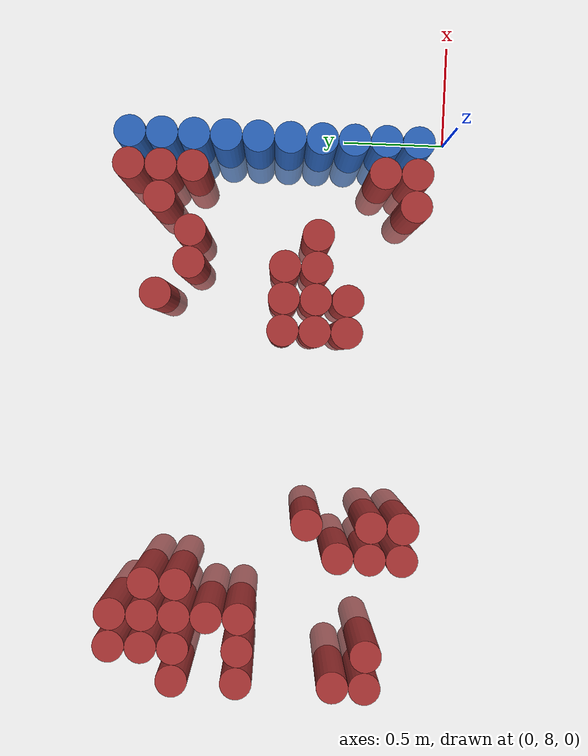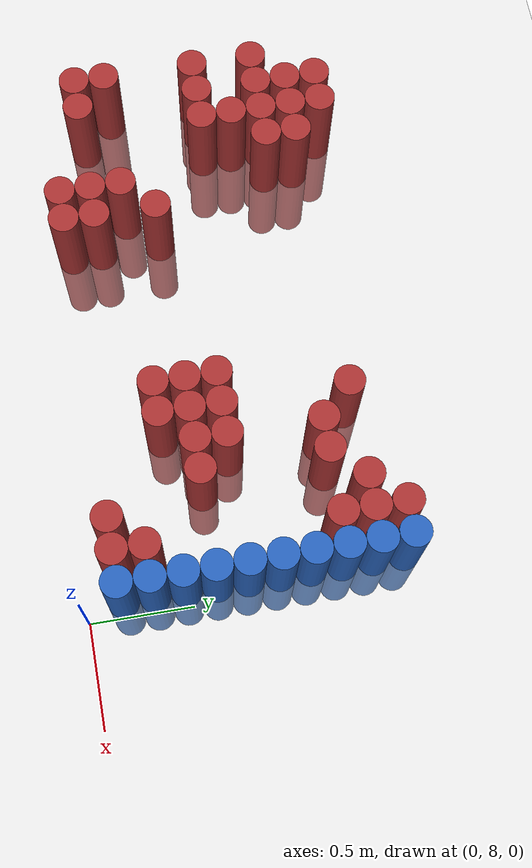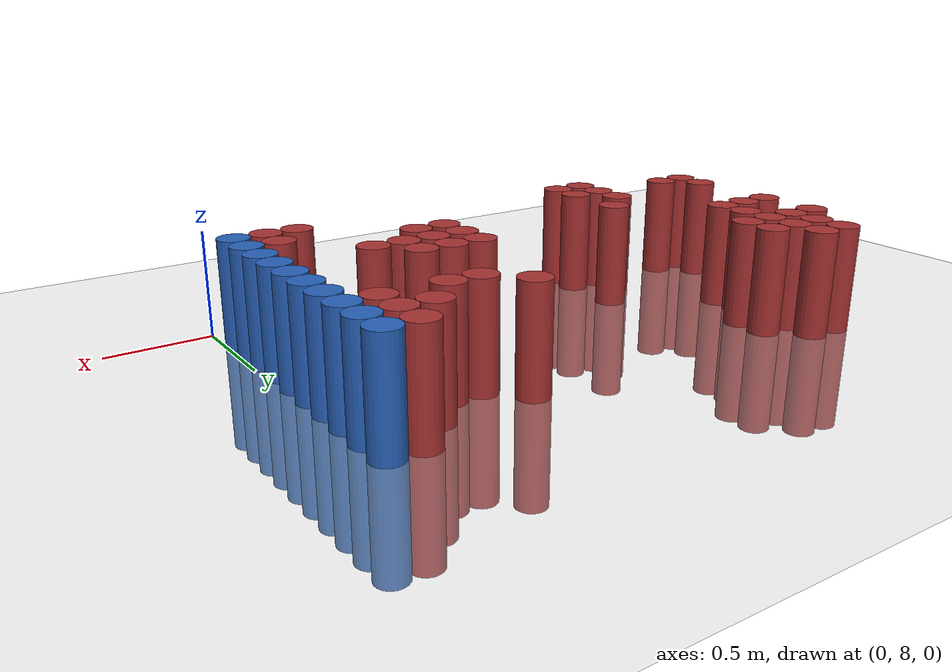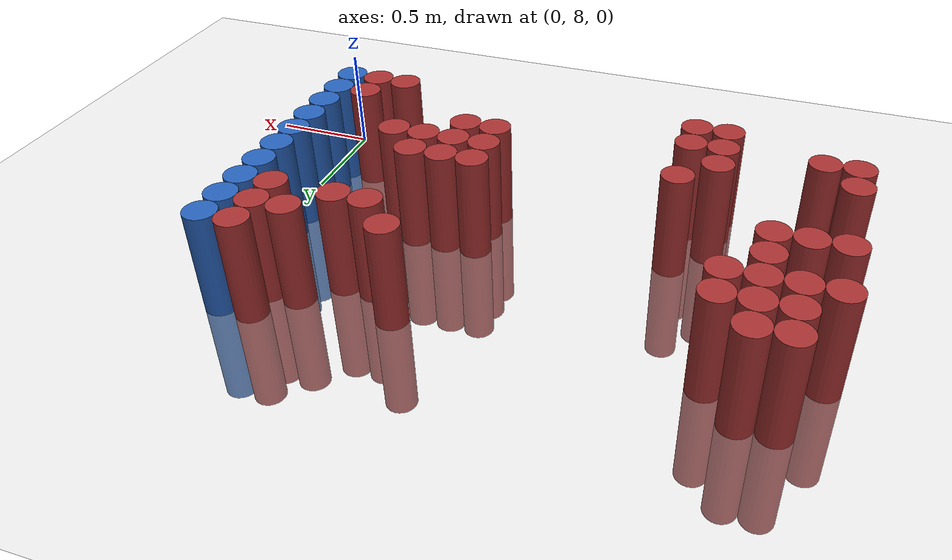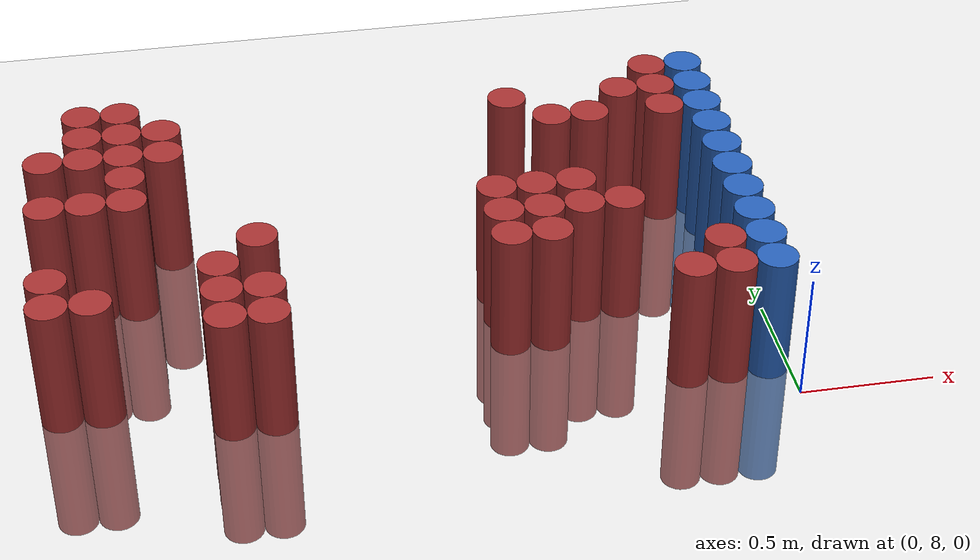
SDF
<sdf version="1.6">
 <world name="default">
  <model name="ground_plane">
   <static>1</static>
   <link name="link">
    <collision name="collision">
     <geometry><plane><normal>0 0 1</normal><size>100 100</size></plane></geometry>
     <surface><friction><ode><mu>100</mu><mu2>50</mu2></ode></friction></surface>
    </collision>
    <visual name="visual">
     <cast_shadows>0</cast_shadows>
     <geometry><plane><normal>0 0 1</normal><size>100 100</size></plane></geometry>
     <material>
      <script><uri>file://media/materials/scripts/gazebo.material</uri><name>Gazebo/Grey</name></script>
     </material>
    </visual>
   </link>
  </model>
  <model name="unit_cylinder_228">
   <static>1</static>
   <pose>-2.625000 8.325000 0.000000 0.000000 0.000000 0.000000</pose>
   <link name="link">
    <inertial>
     <mass>1</mass>
     <inertia><ixx>0.145833</ixx><ixy>0</ixy><ixz>0</ixz><iyy>0.145833</iyy><iyz>0</iyz><izz>0.125</izz></inertia>
    </inertial>
    <collision name="collision">
     <geometry><cylinder><radius>0.075000</radius><length>1</length></cylinder></geometry>
    </collision>
    <visual name="visual">
     <geometry><cylinder><radius>0.075000</radius><length>1</length></cylinder></geometry>
     <material>
      <ambient>0.648000 0.192000 0.192000 1</ambient>
      <diffuse>0.648000 0.192000 0.192000 1</diffuse>
     </material>
     <material>
      <script><name>Gazebo/Grey</name><uri>file://media/materials/scripts/gazebo.material</uri></script>
     </material>
    </visual>
   </link>
  </model>
  <model name="unit_cylinder_229">
   <static>1</static>
   <pose>-2.625000 8.475000 0.000000 0.000000 0.000000 0.000000</pose>
   <link name="link">
    <inertial>
     <mass>1</mass>
     <inertia><ixx>0.145833</ixx><ixy>0</ixy><ixz>0</ixz><iyy>0.145833</iyy><iyz>0</iyz><izz>0.125</izz></inertia>
    </inertial>
    <collision name="collision">
     <geometry><cylinder><radius>0.075000</radius><length>1</length></cylinder></geometry>
    </collision>
    <visual name="visual">
     <geometry><cylinder><radius>0.075000</radius><length>1</length></cylinder></geometry>
     <material>
      <ambient>0.648000 0.192000 0.192000 1</ambient>
      <diffuse>0.648000 0.192000 0.192000 1</diffuse>
     </material>
     <material>
      <script><name>Gazebo/Grey</name><uri>file://media/materials/scripts/gazebo.material</uri></script>
     </material>
    </visual>
   </link>
  </model>
  <model name="unit_cylinder_230">
   <static>1</static>
   <pose>-2.625000 8.925000 0.000000 0.000000 0.000000 0.000000</pose>
   <link name="link">
    <inertial>
     <mass>1</mass>
     <inertia><ixx>0.145833</ixx><ixy>0</ixy><ixz>0</ixz><iyy>0.145833</iyy><iyz>0</iyz><izz>0.125</izz></inertia>
    </inertial>
    <collision name="collision">
     <geometry><cylinder><radius>0.075000</radius><length>1</length></cylinder></geometry>
    </collision>
    <visual name="visual">
     <geometry><cylinder><radius>0.075000</radius><length>1</length></cylinder></geometry>
     <material>
      <ambient>0.648000 0.192000 0.192000 1</ambient>
      <diffuse>0.648000 0.192000 0.192000 1</diffuse>
     </material>
     <material>
      <script><name>Gazebo/Grey</name><uri>file://media/materials/scripts/gazebo.material</uri></script>
     </material>
    </visual>
   </link>
  </model>
  <model name="unit_cylinder_231">
   <static>1</static>
   <pose>-2.625000 9.225000 0.000000 0.000000 0.000000 0.000000</pose>
   <link name="link">
    <inertial>
     <mass>1</mass>
     <inertia><ixx>0.145833</ixx><ixy>0</ixy><ixz>0</ixz><iyy>0.145833</iyy><iyz>0</iyz><izz>0.125</izz></inertia>
    </inertial>
    <collision name="collision">
     <geometry><cylinder><radius>0.075000</radius><length>1</length></cylinder></geometry>
    </collision>
    <visual name="visual">
     <geometry><cylinder><radius>0.075000</radius><length>1</length></cylinder></geometry>
     <material>
      <ambient>0.648000 0.192000 0.192000 1</ambient>
      <diffuse>0.648000 0.192000 0.192000 1</diffuse>
     </material>
     <material>
      <script><name>Gazebo/Grey</name><uri>file://media/materials/scripts/gazebo.material</uri></script>
     </material>
    </visual>
   </link>
  </model>
  <model name="unit_cylinder_236">
   <static>1</static>
   <pose>-2.475000 8.325000 0.000000 0.000000 0.000000 0.000000</pose>
   <link name="link">
    <inertial>
     <mass>1</mass>
     <inertia><ixx>0.145833</ixx><ixy>0</ixy><ixz>0</ixz><iyy>0.145833</iyy><iyz>0</iyz><izz>0.125</izz></inertia>
    </inertial>
    <collision name="collision">
     <geometry><cylinder><radius>0.075000</radius><length>1</length></cylinder></geometry>
    </collision>
    <visual name="visual">
     <geometry><cylinder><radius>0.075000</radius><length>1</length></cylinder></geometry>
     <material>
      <ambient>0.648000 0.192000 0.192000 1</ambient>
      <diffuse>0.648000 0.192000 0.192000 1</diffuse>
     </material>
     <material>
      <script><name>Gazebo/Grey</name><uri>file://media/materials/scripts/gazebo.material</uri></script>
     </material>
    </visual>
   </link>
  </model>
  <model name="unit_cylinder_237">
   <static>1</static>
   <pose>-2.475000 8.925000 0.000000 0.000000 0.000000 0.000000</pose>
   <link name="link">
    <inertial>
     <mass>1</mass>
     <inertia><ixx>0.145833</ixx><ixy>0</ixy><ixz>0</ixz><iyy>0.145833</iyy><iyz>0</iyz><izz>0.125</izz></inertia>
    </inertial>
    <collision name="collision">
     <geometry><cylinder><radius>0.075000</radius><length>1</length></cylinder></geometry>
    </collision>
    <visual name="visual">
     <geometry><cylinder><radius>0.075000</radius><length>1</length></cylinder></geometry>
     <material>
      <ambient>0.648000 0.192000 0.192000 1</ambient>
      <diffuse>0.648000 0.192000 0.192000 1</diffuse>
     </material>
     <material>
      <script><name>Gazebo/Grey</name><uri>file://media/materials/scripts/gazebo.material</uri></script>
     </material>
    </visual>
   </link>
  </model>
  <model name="unit_cylinder_238">
   <static>1</static>
   <pose>-2.475000 9.225000 0.000000 0.000000 0.000000 0.000000</pose>
   <link name="link">
    <inertial>
     <mass>1</mass>
     <inertia><ixx>0.145833</ixx><ixy>0</ixy><ixz>0</ixz><iyy>0.145833</iyy><iyz>0</iyz><izz>0.125</izz></inertia>
    </inertial>
    <collision name="collision">
     <geometry><cylinder><radius>0.075000</radius><length>1</length></cylinder></geometry>
    </collision>
    <visual name="visual">
     <geometry><cylinder><radius>0.075000</radius><length>1</length></cylinder></geometry>
     <material>
      <ambient>0.648000 0.192000 0.192000 1</ambient>
      <diffuse>0.648000 0.192000 0.192000 1</diffuse>
     </material>
     <material>
      <script><name>Gazebo/Grey</name><uri>file://media/materials/scripts/gazebo.material</uri></script>
     </material>
    </visual>
   </link>
  </model>
  <model name="unit_cylinder_239">
   <static>1</static>
   <pose>-2.475000 9.375000 0.000000 0.000000 0.000000 0.000000</pose>
   <link name="link">
    <inertial>
     <mass>1</mass>
     <inertia><ixx>0.145833</ixx><ixy>0</ixy><ixz>0</ixz><iyy>0.145833</iyy><iyz>0</iyz><izz>0.125</izz></inertia>
    </inertial>
    <collision name="collision">
     <geometry><cylinder><radius>0.075000</radius><length>1</length></cylinder></geometry>
    </collision>
    <visual name="visual">
     <geometry><cylinder><radius>0.075000</radius><length>1</length></cylinder></geometry>
     <material>
      <ambient>0.648000 0.192000 0.192000 1</ambient>
      <diffuse>0.648000 0.192000 0.192000 1</diffuse>
     </material>
     <material>
      <script><name>Gazebo/Grey</name><uri>file://media/materials/scripts/gazebo.material</uri></script>
     </material>
    </visual>
   </link>
  </model>
  <model name="unit_cylinder_240">
   <static>1</static>
   <pose>-2.475000 9.525000 0.000000 0.000000 0.000000 0.000000</pose>
   <link name="link">
    <inertial>
     <mass>1</mass>
     <inertia><ixx>0.145833</ixx><ixy>0</ixy><ixz>0</ixz><iyy>0.145833</iyy><iyz>0</iyz><izz>0.125</izz></inertia>
    </inertial>
    <collision name="collision">
     <geometry><cylinder><radius>0.075000</radius><length>1</length></cylinder></geometry>
    </collision>
    <visual name="visual">
     <geometry><cylinder><radius>0.075000</radius><length>1</length></cylinder></geometry>
     <material>
      <ambient>0.648000 0.192000 0.192000 1</ambient>
      <diffuse>0.648000 0.192000 0.192000 1</diffuse>
     </material>
     <material>
      <script><name>Gazebo/Grey</name><uri>file://media/materials/scripts/gazebo.material</uri></script>
     </material>
    </visual>
   </link>
  </model>
  <model name="unit_cylinder_247">
   <static>1</static>
   <pose>-2.325000 8.925000 0.000000 0.000000 0.000000 0.000000</pose>
   <link name="link">
    <inertial>
     <mass>1</mass>
     <inertia><ixx>0.145833</ixx><ixy>0</ixy><ixz>0</ixz><iyy>0.145833</iyy><iyz>0</iyz><izz>0.125</izz></inertia>
    </inertial>
    <collision name="collision">
     <geometry><cylinder><radius>0.075000</radius><length>1</length></cylinder></geometry>
    </collision>
    <visual name="visual">
     <geometry><cylinder><radius>0.075000</radius><length>1</length></cylinder></geometry>
     <material>
      <ambient>0.648000 0.192000 0.192000 1</ambient>
      <diffuse>0.648000 0.192000 0.192000 1</diffuse>
     </material>
     <material>
      <script><name>Gazebo/Grey</name><uri>file://media/materials/scripts/gazebo.material</uri></script>
     </material>
    </visual>
   </link>
  </model>
  <model name="unit_cylinder_248">
   <static>1</static>
   <pose>-2.325000 9.075000 0.000000 0.000000 0.000000 0.000000</pose>
   <link name="link">
    <inertial>
     <mass>1</mass>
     <inertia><ixx>0.145833</ixx><ixy>0</ixy><ixz>0</ixz><iyy>0.145833</iyy><iyz>0</iyz><izz>0.125</izz></inertia>
    </inertial>
    <collision name="collision">
     <geometry><cylinder><radius>0.075000</radius><length>1</length></cylinder></geometry>
    </collision>
    <visual name="visual">
     <geometry><cylinder><radius>0.075000</radius><length>1</length></cylinder></geometry>
     <material>
      <ambient>0.648000 0.192000 0.192000 1</ambient>
      <diffuse>0.648000 0.192000 0.192000 1</diffuse>
     </material>
     <material>
      <script><name>Gazebo/Grey</name><uri>file://media/materials/scripts/gazebo.material</uri></script>
     </material>
    </visual>
   </link>
  </model>
  <model name="unit_cylinder_249">
   <static>1</static>
   <pose>-2.325000 9.225000 0.000000 0.000000 0.000000 0.000000</pose>
   <link name="link">
    <inertial>
     <mass>1</mass>
     <inertia><ixx>0.145833</ixx><ixy>0</ixy><ixz>0</ixz><iyy>0.145833</iyy><iyz>0</iyz><izz>0.125</izz></inertia>
    </inertial>
    <collision name="collision">
     <geometry><cylinder><radius>0.075000</radius><length>1</length></cylinder></geometry>
    </collision>
    <visual name="visual">
     <geometry><cylinder><radius>0.075000</radius><length>1</length></cylinder></geometry>
     <material>
      <ambient>0.648000 0.192000 0.192000 1</ambient>
      <diffuse>0.648000 0.192000 0.192000 1</diffuse>
     </material>
     <material>
      <script><name>Gazebo/Grey</name><uri>file://media/materials/scripts/gazebo.material</uri></script>
     </material>
    </visual>
   </link>
  </model>
  <model name="unit_cylinder_250">
   <static>1</static>
   <pose>-2.325000 9.375000 0.000000 0.000000 0.000000 0.000000</pose>
   <link name="link">
    <inertial>
     <mass>1</mass>
     <inertia><ixx>0.145833</ixx><ixy>0</ixy><ixz>0</ixz><iyy>0.145833</iyy><iyz>0</iyz><izz>0.125</izz></inertia>
    </inertial>
    <collision name="collision">
     <geometry><cylinder><radius>0.075000</radius><length>1</length></cylinder></geometry>
    </collision>
    <visual name="visual">
     <geometry><cylinder><radius>0.075000</radius><length>1</length></cylinder></geometry>
     <material>
      <ambient>0.648000 0.192000 0.192000 1</ambient>
      <diffuse>0.648000 0.192000 0.192000 1</diffuse>
     </material>
     <material>
      <script><name>Gazebo/Grey</name><uri>file://media/materials/scripts/gazebo.material</uri></script>
     </material>
    </visual>
   </link>
  </model>
  <model name="unit_cylinder_251">
   <static>1</static>
   <pose>-2.325000 9.525000 0.000000 0.000000 0.000000 0.000000</pose>
   <link name="link">
    <inertial>
     <mass>1</mass>
     <inertia><ixx>0.145833</ixx><ixy>0</ixy><ixz>0</ixz><iyy>0.145833</iyy><iyz>0</iyz><izz>0.125</izz></inertia>
    </inertial>
    <collision name="collision">
     <geometry><cylinder><radius>0.075000</radius><length>1</length></cylinder></geometry>
    </collision>
    <visual name="visual">
     <geometry><cylinder><radius>0.075000</radius><length>1</length></cylinder></geometry>
     <material>
      <ambient>0.648000 0.192000 0.192000 1</ambient>
      <diffuse>0.648000 0.192000 0.192000 1</diffuse>
     </material>
     <material>
      <script><name>Gazebo/Grey</name><uri>file://media/materials/scripts/gazebo.material</uri></script>
     </material>
    </visual>
   </link>
  </model>
  <model name="unit_cylinder_257">
   <static>1</static>
   <pose>-2.175000 9.225000 0.000000 0.000000 0.000000 0.000000</pose>
   <link name="link">
    <inertial>
     <mass>1</mass>
     <inertia><ixx>0.145833</ixx><ixy>0</ixy><ixz>0</ixz><iyy>0.145833</iyy><iyz>0</iyz><izz>0.125</izz></inertia>
    </inertial>
    <collision name="collision">
     <geometry><cylinder><radius>0.075000</radius><length>1</length></cylinder></geometry>
    </collision>
    <visual name="visual">
     <geometry><cylinder><radius>0.075000</radius><length>1</length></cylinder></geometry>
     <material>
      <ambient>0.648000 0.192000 0.192000 1</ambient>
      <diffuse>0.648000 0.192000 0.192000 1</diffuse>
     </material>
     <material>
      <script><name>Gazebo/Grey</name><uri>file://media/materials/scripts/gazebo.material</uri></script>
     </material>
    </visual>
   </link>
  </model>
  <model name="unit_cylinder_258">
   <static>1</static>
   <pose>-2.175000 9.375000 0.000000 0.000000 0.000000 0.000000</pose>
   <link name="link">
    <inertial>
     <mass>1</mass>
     <inertia><ixx>0.145833</ixx><ixy>0</ixy><ixz>0</ixz><iyy>0.145833</iyy><iyz>0</iyz><izz>0.125</izz></inertia>
    </inertial>
    <collision name="collision">
     <geometry><cylinder><radius>0.075000</radius><length>1</length></cylinder></geometry>
    </collision>
    <visual name="visual">
     <geometry><cylinder><radius>0.075000</radius><length>1</length></cylinder></geometry>
     <material>
      <ambient>0.648000 0.192000 0.192000 1</ambient>
      <diffuse>0.648000 0.192000 0.192000 1</diffuse>
     </material>
     <material>
      <script><name>Gazebo/Grey</name><uri>file://media/materials/scripts/gazebo.material</uri></script>
     </material>
    </visual>
   </link>
  </model>
  <model name="unit_cylinder_263">
   <static>1</static>
   <pose>-2.025000 8.175000 0.000000 0.000000 0.000000 0.000000</pose>
   <link name="link">
    <inertial>
     <mass>1</mass>
     <inertia><ixx>0.145833</ixx><ixy>0</ixy><ixz>0</ixz><iyy>0.145833</iyy><iyz>0</iyz><izz>0.125</izz></inertia>
    </inertial>
    <collision name="collision">
     <geometry><cylinder><radius>0.075000</radius><length>1</length></cylinder></geometry>
    </collision>
    <visual name="visual">
     <geometry><cylinder><radius>0.075000</radius><length>1</length></cylinder></geometry>
     <material>
      <ambient>0.648000 0.192000 0.192000 1</ambient>
      <diffuse>0.648000 0.192000 0.192000 1</diffuse>
     </material>
     <material>
      <script><name>Gazebo/Grey</name><uri>file://media/materials/scripts/gazebo.material</uri></script>
     </material>
    </visual>
   </link>
  </model>
  <model name="unit_cylinder_264">
   <static>1</static>
   <pose>-2.025000 8.325000 0.000000 0.000000 0.000000 0.000000</pose>
   <link name="link">
    <inertial>
     <mass>1</mass>
     <inertia><ixx>0.145833</ixx><ixy>0</ixy><ixz>0</ixz><iyy>0.145833</iyy><iyz>0</iyz><izz>0.125</izz></inertia>
    </inertial>
    <collision name="collision">
     <geometry><cylinder><radius>0.075000</radius><length>1</length></cylinder></geometry>
    </collision>
    <visual name="visual">
     <geometry><cylinder><radius>0.075000</radius><length>1</length></cylinder></geometry>
     <material>
      <ambient>0.648000 0.192000 0.192000 1</ambient>
      <diffuse>0.648000 0.192000 0.192000 1</diffuse>
     </material>
     <material>
      <script><name>Gazebo/Grey</name><uri>file://media/materials/scripts/gazebo.material</uri></script>
     </material>
    </visual>
   </link>
  </model>
  <model name="unit_cylinder_265">
   <static>1</static>
   <pose>-2.025000 8.475000 0.000000 0.000000 0.000000 0.000000</pose>
   <link name="link">
    <inertial>
     <mass>1</mass>
     <inertia><ixx>0.145833</ixx><ixy>0</ixy><ixz>0</ixz><iyy>0.145833</iyy><iyz>0</iyz><izz>0.125</izz></inertia>
    </inertial>
    <collision name="collision">
     <geometry><cylinder><radius>0.075000</radius><length>1</length></cylinder></geometry>
    </collision>
    <visual name="visual">
     <geometry><cylinder><radius>0.075000</radius><length>1</length></cylinder></geometry>
     <material>
      <ambient>0.648000 0.192000 0.192000 1</ambient>
      <diffuse>0.648000 0.192000 0.192000 1</diffuse>
     </material>
     <material>
      <script><name>Gazebo/Grey</name><uri>file://media/materials/scripts/gazebo.material</uri></script>
     </material>
    </visual>
   </link>
  </model>
  <model name="unit_cylinder_270">
   <static>1</static>
   <pose>-1.875000 8.175000 0.000000 0.000000 0.000000 0.000000</pose>
   <link name="link">
    <inertial>
     <mass>1</mass>
     <inertia><ixx>0.145833</ixx><ixy>0</ixy><ixz>0</ixz><iyy>0.145833</iyy><iyz>0</iyz><izz>0.125</izz></inertia>
    </inertial>
    <collision name="collision">
     <geometry><cylinder><radius>0.075000</radius><length>1</length></cylinder></geometry>
    </collision>
    <visual name="visual">
     <geometry><cylinder><radius>0.075000</radius><length>1</length></cylinder></geometry>
     <material>
      <ambient>0.648000 0.192000 0.192000 1</ambient>
      <diffuse>0.648000 0.192000 0.192000 1</diffuse>
     </material>
     <material>
      <script><name>Gazebo/Grey</name><uri>file://media/materials/scripts/gazebo.material</uri></script>
     </material>
    </visual>
   </link>
  </model>
  <model name="unit_cylinder_271">
   <static>1</static>
   <pose>-1.875000 8.325000 0.000000 0.000000 0.000000 0.000000</pose>
   <link name="link">
    <inertial>
     <mass>1</mass>
     <inertia><ixx>0.145833</ixx><ixy>0</ixy><ixz>0</ixz><iyy>0.145833</iyy><iyz>0</iyz><izz>0.125</izz></inertia>
    </inertial>
    <collision name="collision">
     <geometry><cylinder><radius>0.075000</radius><length>1</length></cylinder></geometry>
    </collision>
    <visual name="visual">
     <geometry><cylinder><radius>0.075000</radius><length>1</length></cylinder></geometry>
     <material>
      <ambient>0.648000 0.192000 0.192000 1</ambient>
      <diffuse>0.648000 0.192000 0.192000 1</diffuse>
     </material>
     <material>
      <script><name>Gazebo/Grey</name><uri>file://media/materials/scripts/gazebo.material</uri></script>
     </material>
    </visual>
   </link>
  </model>
  <model name="unit_cylinder_272">
   <static>1</static>
   <pose>-1.875000 8.625000 0.000000 0.000000 0.000000 0.000000</pose>
   <link name="link">
    <inertial>
     <mass>1</mass>
     <inertia><ixx>0.145833</ixx><ixy>0</ixy><ixz>0</ixz><iyy>0.145833</iyy><iyz>0</iyz><izz>0.125</izz></inertia>
    </inertial>
    <collision name="collision">
     <geometry><cylinder><radius>0.075000</radius><length>1</length></cylinder></geometry>
    </collision>
    <visual name="visual">
     <geometry><cylinder><radius>0.075000</radius><length>1</length></cylinder></geometry>
     <material>
      <ambient>0.648000 0.192000 0.192000 1</ambient>
      <diffuse>0.648000 0.192000 0.192000 1</diffuse>
     </material>
     <material>
      <script><name>Gazebo/Grey</name><uri>file://media/materials/scripts/gazebo.material</uri></script>
     </material>
    </visual>
   </link>
  </model>
  <model name="unit_cylinder_282">
   <static>1</static>
   <pose>-0.975000 8.475000 0.000000 0.000000 0.000000 0.000000</pose>
   <link name="link">
    <inertial>
     <mass>1</mass>
     <inertia><ixx>0.145833</ixx><ixy>0</ixy><ixz>0</ixz><iyy>0.145833</iyy><iyz>0</iyz><izz>0.125</izz></inertia>
    </inertial>
    <collision name="collision">
     <geometry><cylinder><radius>0.075000</radius><length>1</length></cylinder></geometry>
    </collision>
    <visual name="visual">
     <geometry><cylinder><radius>0.075000</radius><length>1</length></cylinder></geometry>
     <material>
      <ambient>0.648000 0.192000 0.192000 1</ambient>
      <diffuse>0.648000 0.192000 0.192000 1</diffuse>
     </material>
     <material>
      <script><name>Gazebo/Grey</name><uri>file://media/materials/scripts/gazebo.material</uri></script>
     </material>
    </visual>
   </link>
  </model>
  <model name="unit_cylinder_283">
   <static>1</static>
   <pose>-0.975000 8.625000 0.000000 0.000000 0.000000 0.000000</pose>
   <link name="link">
    <inertial>
     <mass>1</mass>
     <inertia><ixx>0.145833</ixx><ixy>0</ixy><ixz>0</ixz><iyy>0.145833</iyy><iyz>0</iyz><izz>0.125</izz></inertia>
    </inertial>
    <collision name="collision">
     <geometry><cylinder><radius>0.075000</radius><length>1</length></cylinder></geometry>
    </collision>
    <visual name="visual">
     <geometry><cylinder><radius>0.075000</radius><length>1</length></cylinder></geometry>
     <material>
      <ambient>0.648000 0.192000 0.192000 1</ambient>
      <diffuse>0.648000 0.192000 0.192000 1</diffuse>
     </material>
     <material>
      <script><name>Gazebo/Grey</name><uri>file://media/materials/scripts/gazebo.material</uri></script>
     </material>
    </visual>
   </link>
  </model>
  <model name="unit_cylinder_284">
   <static>1</static>
   <pose>-0.975000 8.775000 0.000000 0.000000 0.000000 0.000000</pose>
   <link name="link">
    <inertial>
     <mass>1</mass>
     <inertia><ixx>0.145833</ixx><ixy>0</ixy><ixz>0</ixz><iyy>0.145833</iyy><iyz>0</iyz><izz>0.125</izz></inertia>
    </inertial>
    <collision name="collision">
     <geometry><cylinder><radius>0.075000</radius><length>1</length></cylinder></geometry>
    </collision>
    <visual name="visual">
     <geometry><cylinder><radius>0.075000</radius><length>1</length></cylinder></geometry>
     <material>
      <ambient>0.648000 0.192000 0.192000 1</ambient>
      <diffuse>0.648000 0.192000 0.192000 1</diffuse>
     </material>
     <material>
      <script><name>Gazebo/Grey</name><uri>file://media/materials/scripts/gazebo.material</uri></script>
     </material>
    </visual>
   </link>
  </model>
  <model name="unit_cylinder_289">
   <static>1</static>
   <pose>-0.825000 8.475000 0.000000 0.000000 0.000000 0.000000</pose>
   <link name="link">
    <inertial>
     <mass>1</mass>
     <inertia><ixx>0.145833</ixx><ixy>0</ixy><ixz>0</ixz><iyy>0.145833</iyy><iyz>0</iyz><izz>0.125</izz></inertia>
    </inertial>
    <collision name="collision">
     <geometry><cylinder><radius>0.075000</radius><length>1</length></cylinder></geometry>
    </collision>
    <visual name="visual">
     <geometry><cylinder><radius>0.075000</radius><length>1</length></cylinder></geometry>
     <material>
      <ambient>0.648000 0.192000 0.192000 1</ambient>
      <diffuse>0.648000 0.192000 0.192000 1</diffuse>
     </material>
     <material>
      <script><name>Gazebo/Grey</name><uri>file://media/materials/scripts/gazebo.material</uri></script>
     </material>
    </visual>
   </link>
  </model>
  <model name="unit_cylinder_290">
   <static>1</static>
   <pose>-0.825000 8.625000 0.000000 0.000000 0.000000 0.000000</pose>
   <link name="link">
    <inertial>
     <mass>1</mass>
     <inertia><ixx>0.145833</ixx><ixy>0</ixy><ixz>0</ixz><iyy>0.145833</iyy><iyz>0</iyz><izz>0.125</izz></inertia>
    </inertial>
    <collision name="collision">
     <geometry><cylinder><radius>0.075000</radius><length>1</length></cylinder></geometry>
    </collision>
    <visual name="visual">
     <geometry><cylinder><radius>0.075000</radius><length>1</length></cylinder></geometry>
     <material>
      <ambient>0.648000 0.192000 0.192000 1</ambient>
      <diffuse>0.648000 0.192000 0.192000 1</diffuse>
     </material>
     <material>
      <script><name>Gazebo/Grey</name><uri>file://media/materials/scripts/gazebo.material</uri></script>
     </material>
    </visual>
   </link>
  </model>
  <model name="unit_cylinder_291">
   <static>1</static>
   <pose>-0.825000 8.775000 0.000000 0.000000 0.000000 0.000000</pose>
   <link name="link">
    <inertial>
     <mass>1</mass>
     <inertia><ixx>0.145833</ixx><ixy>0</ixy><ixz>0</ixz><iyy>0.145833</iyy><iyz>0</iyz><izz>0.125</izz></inertia>
    </inertial>
    <collision name="collision">
     <geometry><cylinder><radius>0.075000</radius><length>1</length></cylinder></geometry>
    </collision>
    <visual name="visual">
     <geometry><cylinder><radius>0.075000</radius><length>1</length></cylinder></geometry>
     <material>
      <ambient>0.648000 0.192000 0.192000 1</ambient>
      <diffuse>0.648000 0.192000 0.192000 1</diffuse>
     </material>
     <material>
      <script><name>Gazebo/Grey</name><uri>file://media/materials/scripts/gazebo.material</uri></script>
     </material>
    </visual>
   </link>
  </model>
  <model name="unit_cylinder_292">
   <static>1</static>
   <pose>-0.825000 9.375000 0.000000 0.000000 0.000000 0.000000</pose>
   <link name="link">
    <inertial>
     <mass>1</mass>
     <inertia><ixx>0.145833</ixx><ixy>0</ixy><ixz>0</ixz><iyy>0.145833</iyy><iyz>0</iyz><izz>0.125</izz></inertia>
    </inertial>
    <collision name="collision">
     <geometry><cylinder><radius>0.075000</radius><length>1</length></cylinder></geometry>
    </collision>
    <visual name="visual">
     <geometry><cylinder><radius>0.075000</radius><length>1</length></cylinder></geometry>
     <material>
      <ambient>0.648000 0.192000 0.192000 1</ambient>
      <diffuse>0.648000 0.192000 0.192000 1</diffuse>
     </material>
     <material>
      <script><name>Gazebo/Grey</name><uri>file://media/materials/scripts/gazebo.material</uri></script>
     </material>
    </visual>
   </link>
  </model>
  <model name="unit_cylinder_297">
   <static>1</static>
   <pose>-0.675000 8.625000 0.000000 0.000000 0.000000 0.000000</pose>
   <link name="link">
    <inertial>
     <mass>1</mass>
     <inertia><ixx>0.145833</ixx><ixy>0</ixy><ixz>0</ixz><iyy>0.145833</iyy><iyz>0</iyz><izz>0.125</izz></inertia>
    </inertial>
    <collision name="collision">
     <geometry><cylinder><radius>0.075000</radius><length>1</length></cylinder></geometry>
    </collision>
    <visual name="visual">
     <geometry><cylinder><radius>0.075000</radius><length>1</length></cylinder></geometry>
     <material>
      <ambient>0.648000 0.192000 0.192000 1</ambient>
      <diffuse>0.648000 0.192000 0.192000 1</diffuse>
     </material>
     <material>
      <script><name>Gazebo/Grey</name><uri>file://media/materials/scripts/gazebo.material</uri></script>
     </material>
    </visual>
   </link>
  </model>
  <model name="unit_cylinder_298">
   <static>1</static>
   <pose>-0.675000 8.775000 0.000000 0.000000 0.000000 0.000000</pose>
   <link name="link">
    <inertial>
     <mass>1</mass>
     <inertia><ixx>0.145833</ixx><ixy>0</ixy><ixz>0</ixz><iyy>0.145833</iyy><iyz>0</iyz><izz>0.125</izz></inertia>
    </inertial>
    <collision name="collision">
     <geometry><cylinder><radius>0.075000</radius><length>1</length></cylinder></geometry>
    </collision>
    <visual name="visual">
     <geometry><cylinder><radius>0.075000</radius><length>1</length></cylinder></geometry>
     <material>
      <ambient>0.648000 0.192000 0.192000 1</ambient>
      <diffuse>0.648000 0.192000 0.192000 1</diffuse>
     </material>
     <material>
      <script><name>Gazebo/Grey</name><uri>file://media/materials/scripts/gazebo.material</uri></script>
     </material>
    </visual>
   </link>
  </model>
  <model name="unit_cylinder_299">
   <static>1</static>
   <pose>-0.675000 9.225000 0.000000 0.000000 0.000000 0.000000</pose>
   <link name="link">
    <inertial>
     <mass>1</mass>
     <inertia><ixx>0.145833</ixx><ixy>0</ixy><ixz>0</ixz><iyy>0.145833</iyy><iyz>0</iyz><izz>0.125</izz></inertia>
    </inertial>
    <collision name="collision">
     <geometry><cylinder><radius>0.075000</radius><length>1</length></cylinder></geometry>
    </collision>
    <visual name="visual">
     <geometry><cylinder><radius>0.075000</radius><length>1</length></cylinder></geometry>
     <material>
      <ambient>0.648000 0.192000 0.192000 1</ambient>
      <diffuse>0.648000 0.192000 0.192000 1</diffuse>
     </material>
     <material>
      <script><name>Gazebo/Grey</name><uri>file://media/materials/scripts/gazebo.material</uri></script>
     </material>
    </visual>
   </link>
  </model>
  <model name="unit_cylinder_305">
   <static>1</static>
   <pose>-0.525000 8.625000 0.000000 0.000000 0.000000 0.000000</pose>
   <link name="link">
    <inertial>
     <mass>1</mass>
     <inertia><ixx>0.145833</ixx><ixy>0</ixy><ixz>0</ixz><iyy>0.145833</iyy><iyz>0</iyz><izz>0.125</izz></inertia>
    </inertial>
    <collision name="collision">
     <geometry><cylinder><radius>0.075000</radius><length>1</length></cylinder></geometry>
    </collision>
    <visual name="visual">
     <geometry><cylinder><radius>0.075000</radius><length>1</length></cylinder></geometry>
     <material>
      <ambient>0.648000 0.192000 0.192000 1</ambient>
      <diffuse>0.648000 0.192000 0.192000 1</diffuse>
     </material>
     <material>
      <script><name>Gazebo/Grey</name><uri>file://media/materials/scripts/gazebo.material</uri></script>
     </material>
    </visual>
   </link>
  </model>
  <model name="unit_cylinder_306">
   <static>1</static>
   <pose>-0.525000 9.225000 0.000000 0.000000 0.000000 0.000000</pose>
   <link name="link">
    <inertial>
     <mass>1</mass>
     <inertia><ixx>0.145833</ixx><ixy>0</ixy><ixz>0</ixz><iyy>0.145833</iyy><iyz>0</iyz><izz>0.125</izz></inertia>
    </inertial>
    <collision name="collision">
     <geometry><cylinder><radius>0.075000</radius><length>1</length></cylinder></geometry>
    </collision>
    <visual name="visual">
     <geometry><cylinder><radius>0.075000</radius><length>1</length></cylinder></geometry>
     <material>
      <ambient>0.648000 0.192000 0.192000 1</ambient>
      <diffuse>0.648000 0.192000 0.192000 1</diffuse>
     </material>
     <material>
      <script><name>Gazebo/Grey</name><uri>file://media/materials/scripts/gazebo.material</uri></script>
     </material>
    </visual>
   </link>
  </model>
  <model name="unit_cylinder_310">
   <static>1</static>
   <pose>-0.375000 8.175000 0.000000 0.000000 0.000000 0.000000</pose>
   <link name="link">
    <inertial>
     <mass>1</mass>
     <inertia><ixx>0.145833</ixx><ixy>0</ixy><ixz>0</ixz><iyy>0.145833</iyy><iyz>0</iyz><izz>0.125</izz></inertia>
    </inertial>
    <collision name="collision">
     <geometry><cylinder><radius>0.075000</radius><length>1</length></cylinder></geometry>
    </collision>
    <visual name="visual">
     <geometry><cylinder><radius>0.075000</radius><length>1</length></cylinder></geometry>
     <material>
      <ambient>0.648000 0.192000 0.192000 1</ambient>
      <diffuse>0.648000 0.192000 0.192000 1</diffuse>
     </material>
     <material>
      <script><name>Gazebo/Grey</name><uri>file://media/materials/scripts/gazebo.material</uri></script>
     </material>
    </visual>
   </link>
  </model>
  <model name="unit_cylinder_311">
   <static>1</static>
   <pose>-0.375000 9.375000 0.000000 0.000000 0.000000 0.000000</pose>
   <link name="link">
    <inertial>
     <mass>1</mass>
     <inertia><ixx>0.145833</ixx><ixy>0</ixy><ixz>0</ixz><iyy>0.145833</iyy><iyz>0</iyz><izz>0.125</izz></inertia>
    </inertial>
    <collision name="collision">
     <geometry><cylinder><radius>0.075000</radius><length>1</length></cylinder></geometry>
    </collision>
    <visual name="visual">
     <geometry><cylinder><radius>0.075000</radius><length>1</length></cylinder></geometry>
     <material>
      <ambient>0.648000 0.192000 0.192000 1</ambient>
      <diffuse>0.648000 0.192000 0.192000 1</diffuse>
     </material>
     <material>
      <script><name>Gazebo/Grey</name><uri>file://media/materials/scripts/gazebo.material</uri></script>
     </material>
    </visual>
   </link>
  </model>
  <model name="unit_cylinder_318">
   <static>1</static>
   <pose>-0.225000 8.175000 0.000000 0.000000 0.000000 0.000000</pose>
   <link name="link">
    <inertial>
     <mass>1</mass>
     <inertia><ixx>0.145833</ixx><ixy>0</ixy><ixz>0</ixz><iyy>0.145833</iyy><iyz>0</iyz><izz>0.125</izz></inertia>
    </inertial>
    <collision name="collision">
     <geometry><cylinder><radius>0.075000</radius><length>1</length></cylinder></geometry>
    </collision>
    <visual name="visual">
     <geometry><cylinder><radius>0.075000</radius><length>1</length></cylinder></geometry>
     <material>
      <ambient>0.648000 0.192000 0.192000 1</ambient>
      <diffuse>0.648000 0.192000 0.192000 1</diffuse>
     </material>
     <material>
      <script><name>Gazebo/Grey</name><uri>file://media/materials/scripts/gazebo.material</uri></script>
     </material>
    </visual>
   </link>
  </model>
  <model name="unit_cylinder_319">
   <static>1</static>
   <pose>-0.225000 8.325000 0.000000 0.000000 0.000000 0.000000</pose>
   <link name="link">
    <inertial>
     <mass>1</mass>
     <inertia><ixx>0.145833</ixx><ixy>0</ixy><ixz>0</ixz><iyy>0.145833</iyy><iyz>0</iyz><izz>0.125</izz></inertia>
    </inertial>
    <collision name="collision">
     <geometry><cylinder><radius>0.075000</radius><length>1</length></cylinder></geometry>
    </collision>
    <visual name="visual">
     <geometry><cylinder><radius>0.075000</radius><length>1</length></cylinder></geometry>
     <material>
      <ambient>0.648000 0.192000 0.192000 1</ambient>
      <diffuse>0.648000 0.192000 0.192000 1</diffuse>
     </material>
     <material>
      <script><name>Gazebo/Grey</name><uri>file://media/materials/scripts/gazebo.material</uri></script>
     </material>
    </visual>
   </link>
  </model>
  <model name="unit_cylinder_320">
   <static>1</static>
   <pose>-0.225000 9.225000 0.000000 0.000000 0.000000 0.000000</pose>
   <link name="link">
    <inertial>
     <mass>1</mass>
     <inertia><ixx>0.145833</ixx><ixy>0</ixy><ixz>0</ixz><iyy>0.145833</iyy><iyz>0</iyz><izz>0.125</izz></inertia>
    </inertial>
    <collision name="collision">
     <geometry><cylinder><radius>0.075000</radius><length>1</length></cylinder></geometry>
    </collision>
    <visual name="visual">
     <geometry><cylinder><radius>0.075000</radius><length>1</length></cylinder></geometry>
     <material>
      <ambient>0.648000 0.192000 0.192000 1</ambient>
      <diffuse>0.648000 0.192000 0.192000 1</diffuse>
     </material>
     <material>
      <script><name>Gazebo/Grey</name><uri>file://media/materials/scripts/gazebo.material</uri></script>
     </material>
    </visual>
   </link>
  </model>
  <model name="unit_cylinder_321">
   <static>1</static>
   <pose>-0.225000 9.375000 0.000000 0.000000 0.000000 0.000000</pose>
   <link name="link">
    <inertial>
     <mass>1</mass>
     <inertia><ixx>0.145833</ixx><ixy>0</ixy><ixz>0</ixz><iyy>0.145833</iyy><iyz>0</iyz><izz>0.125</izz></inertia>
    </inertial>
    <collision name="collision">
     <geometry><cylinder><radius>0.075000</radius><length>1</length></cylinder></geometry>
    </collision>
    <visual name="visual">
     <geometry><cylinder><radius>0.075000</radius><length>1</length></cylinder></geometry>
     <material>
      <ambient>0.648000 0.192000 0.192000 1</ambient>
      <diffuse>0.648000 0.192000 0.192000 1</diffuse>
     </material>
     <material>
      <script><name>Gazebo/Grey</name><uri>file://media/materials/scripts/gazebo.material</uri></script>
     </material>
    </visual>
   </link>
  </model>
  <model name="unit_cylinder_322">
   <static>1</static>
   <pose>-0.225000 9.525000 0.000000 0.000000 0.000000 0.000000</pose>
   <link name="link">
    <inertial>
     <mass>1</mass>
     <inertia><ixx>0.145833</ixx><ixy>0</ixy><ixz>0</ixz><iyy>0.145833</iyy><iyz>0</iyz><izz>0.125</izz></inertia>
    </inertial>
    <collision name="collision">
     <geometry><cylinder><radius>0.075000</radius><length>1</length></cylinder></geometry>
    </collision>
    <visual name="visual">
     <geometry><cylinder><radius>0.075000</radius><length>1</length></cylinder></geometry>
     <material>
      <ambient>0.648000 0.192000 0.192000 1</ambient>
      <diffuse>0.648000 0.192000 0.192000 1</diffuse>
     </material>
     <material>
      <script><name>Gazebo/Grey</name><uri>file://media/materials/scripts/gazebo.material</uri></script>
     </material>
    </visual>
   </link>
  </model>
  <model name="unit_cylinder_343">
   <static>1</static>
   <pose>-0.075000 8.175000 0.000000 0.000000 0.000000 0.000000</pose>
   <link name="link">
    <inertial>
     <mass>1</mass>
     <inertia><ixx>0.145833</ixx><ixy>0</ixy><ixz>0</ixz><iyy>0.145833</iyy><iyz>0</iyz><izz>0.125</izz></inertia>
    </inertial>
    <collision name="collision">
     <geometry><cylinder><radius>0.075000</radius><length>1</length></cylinder></geometry>
    </collision>
    <visual name="visual">
     <geometry><cylinder><radius>0.075000</radius><length>1</length></cylinder></geometry>
     <material>
      <ambient>0.152000 0.379000 0.720000 1</ambient>
      <diffuse>0.152000 0.379000 0.720000 1</diffuse>
     </material>
     <material>
      <script><name>Gazebo/Grey</name><uri>file://media/materials/scripts/gazebo.material</uri></script>
     </material>
    </visual>
   </link>
  </model>
  <model name="unit_cylinder_344">
   <static>1</static>
   <pose>-0.075000 8.325000 0.000000 0.000000 0.000000 0.000000</pose>
   <link name="link">
    <inertial>
     <mass>1</mass>
     <inertia><ixx>0.145833</ixx><ixy>0</ixy><ixz>0</ixz><iyy>0.145833</iyy><iyz>0</iyz><izz>0.125</izz></inertia>
    </inertial>
    <collision name="collision">
     <geometry><cylinder><radius>0.075000</radius><length>1</length></cylinder></geometry>
    </collision>
    <visual name="visual">
     <geometry><cylinder><radius>0.075000</radius><length>1</length></cylinder></geometry>
     <material>
      <ambient>0.152000 0.379000 0.720000 1</ambient>
      <diffuse>0.152000 0.379000 0.720000 1</diffuse>
     </material>
     <material>
      <script><name>Gazebo/Grey</name><uri>file://media/materials/scripts/gazebo.material</uri></script>
     </material>
    </visual>
   </link>
  </model>
  <model name="unit_cylinder_345">
   <static>1</static>
   <pose>-0.075000 8.475000 0.000000 0.000000 0.000000 0.000000</pose>
   <link name="link">
    <inertial>
     <mass>1</mass>
     <inertia><ixx>0.145833</ixx><ixy>0</ixy><ixz>0</ixz><iyy>0.145833</iyy><iyz>0</iyz><izz>0.125</izz></inertia>
    </inertial>
    <collision name="collision">
     <geometry><cylinder><radius>0.075000</radius><length>1</length></cylinder></geometry>
    </collision>
    <visual name="visual">
     <geometry><cylinder><radius>0.075000</radius><length>1</length></cylinder></geometry>
     <material>
      <ambient>0.152000 0.379000 0.720000 1</ambient>
      <diffuse>0.152000 0.379000 0.720000 1</diffuse>
     </material>
     <material>
      <script><name>Gazebo/Grey</name><uri>file://media/materials/scripts/gazebo.material</uri></script>
     </material>
    </visual>
   </link>
  </model>
  <model name="unit_cylinder_346">
   <static>1</static>
   <pose>-0.075000 8.625000 0.000000 0.000000 0.000000 0.000000</pose>
   <link name="link">
    <inertial>
     <mass>1</mass>
     <inertia><ixx>0.145833</ixx><ixy>0</ixy><ixz>0</ixz><iyy>0.145833</iyy><iyz>0</iyz><izz>0.125</izz></inertia>
    </inertial>
    <collision name="collision">
     <geometry><cylinder><radius>0.075000</radius><length>1</length></cylinder></geometry>
    </collision>
    <visual name="visual">
     <geometry><cylinder><radius>0.075000</radius><length>1</length></cylinder></geometry>
     <material>
      <ambient>0.152000 0.379000 0.720000 1</ambient>
      <diffuse>0.152000 0.379000 0.720000 1</diffuse>
     </material>
     <material>
      <script><name>Gazebo/Grey</name><uri>file://media/materials/scripts/gazebo.material</uri></script>
     </material>
    </visual>
   </link>
  </model>
  <model name="unit_cylinder_347">
   <static>1</static>
   <pose>-0.075000 8.775000 0.000000 0.000000 0.000000 0.000000</pose>
   <link name="link">
    <inertial>
     <mass>1</mass>
     <inertia><ixx>0.145833</ixx><ixy>0</ixy><ixz>0</ixz><iyy>0.145833</iyy><iyz>0</iyz><izz>0.125</izz></inertia>
    </inertial>
    <collision name="collision">
     <geometry><cylinder><radius>0.075000</radius><length>1</length></cylinder></geometry>
    </collision>
    <visual name="visual">
     <geometry><cylinder><radius>0.075000</radius><length>1</length></cylinder></geometry>
     <material>
      <ambient>0.152000 0.379000 0.720000 1</ambient>
      <diffuse>0.152000 0.379000 0.720000 1</diffuse>
     </material>
     <material>
      <script><name>Gazebo/Grey</name><uri>file://media/materials/scripts/gazebo.material</uri></script>
     </material>
    </visual>
   </link>
  </model>
  <model name="unit_cylinder_348">
   <static>1</static>
   <pose>-0.075000 8.925000 0.000000 0.000000 0.000000 0.000000</pose>
   <link name="link">
    <inertial>
     <mass>1</mass>
     <inertia><ixx>0.145833</ixx><ixy>0</ixy><ixz>0</ixz><iyy>0.145833</iyy><iyz>0</iyz><izz>0.125</izz></inertia>
    </inertial>
    <collision name="collision">
     <geometry><cylinder><radius>0.075000</radius><length>1</length></cylinder></geometry>
    </collision>
    <visual name="visual">
     <geometry><cylinder><radius>0.075000</radius><length>1</length></cylinder></geometry>
     <material>
      <ambient>0.152000 0.379000 0.720000 1</ambient>
      <diffuse>0.152000 0.379000 0.720000 1</diffuse>
     </material>
     <material>
      <script><name>Gazebo/Grey</name><uri>file://media/materials/scripts/gazebo.material</uri></script>
     </material>
    </visual>
   </link>
  </model>
  <model name="unit_cylinder_349">
   <static>1</static>
   <pose>-0.075000 9.075000 0.000000 0.000000 0.000000 0.000000</pose>
   <link name="link">
    <inertial>
     <mass>1</mass>
     <inertia><ixx>0.145833</ixx><ixy>0</ixy><ixz>0</ixz><iyy>0.145833</iyy><iyz>0</iyz><izz>0.125</izz></inertia>
    </inertial>
    <collision name="collision">
     <geometry><cylinder><radius>0.075000</radius><length>1</length></cylinder></geometry>
    </collision>
    <visual name="visual">
     <geometry><cylinder><radius>0.075000</radius><length>1</length></cylinder></geometry>
     <material>
      <ambient>0.152000 0.379000 0.720000 1</ambient>
      <diffuse>0.152000 0.379000 0.720000 1</diffuse>
     </material>
     <material>
      <script><name>Gazebo/Grey</name><uri>file://media/materials/scripts/gazebo.material</uri></script>
     </material>
    </visual>
   </link>
  </model>
  <model name="unit_cylinder_350">
   <static>1</static>
   <pose>-0.075000 9.225000 0.000000 0.000000 0.000000 0.000000</pose>
   <link name="link">
    <inertial>
     <mass>1</mass>
     <inertia><ixx>0.145833</ixx><ixy>0</ixy><ixz>0</ixz><iyy>0.145833</iyy><iyz>0</iyz><izz>0.125</izz></inertia>
    </inertial>
    <collision name="collision">
     <geometry><cylinder><radius>0.075000</radius><length>1</length></cylinder></geometry>
    </collision>
    <visual name="visual">
     <geometry><cylinder><radius>0.075000</radius><length>1</length></cylinder></geometry>
     <material>
      <ambient>0.152000 0.379000 0.720000 1</ambient>
      <diffuse>0.152000 0.379000 0.720000 1</diffuse>
     </material>
     <material>
      <script><name>Gazebo/Grey</name><uri>file://media/materials/scripts/gazebo.material</uri></script>
     </material>
    </visual>
   </link>
  </model>
  <model name="unit_cylinder_351">
   <static>1</static>
   <pose>-0.075000 9.375000 0.000000 0.000000 0.000000 0.000000</pose>
   <link name="link">
    <inertial>
     <mass>1</mass>
     <inertia><ixx>0.145833</ixx><ixy>0</ixy><ixz>0</ixz><iyy>0.145833</iyy><iyz>0</iyz><izz>0.125</izz></inertia>
    </inertial>
    <collision name="collision">
     <geometry><cylinder><radius>0.075000</radius><length>1</length></cylinder></geometry>
    </collision>
    <visual name="visual">
     <geometry><cylinder><radius>0.075000</radius><length>1</length></cylinder></geometry>
     <material>
      <ambient>0.152000 0.379000 0.720000 1</ambient>
      <diffuse>0.152000 0.379000 0.720000 1</diffuse>
     </material>
     <material>
      <script><name>Gazebo/Grey</name><uri>file://media/materials/scripts/gazebo.material</uri></script>
     </material>
    </visual>
   </link>
  </model>
  <model name="unit_cylinder_352">
   <static>1</static>
   <pose>-0.075000 9.525000 0.000000 0.000000 0.000000 0.000000</pose>
   <link name="link">
    <inertial>
     <mass>1</mass>
     <inertia><ixx>0.145833</ixx><ixy>0</ixy><ixz>0</ixz><iyy>0.145833</iyy><iyz>0</iyz><izz>0.125</izz></inertia>
    </inertial>
    <collision name="collision">
     <geometry><cylinder><radius>0.075000</radius><length>1</length></cylinder></geometry>
    </collision>
    <visual name="visual">
     <geometry><cylinder><radius>0.075000</radius><length>1</length></cylinder></geometry>
     <material>
      <ambient>0.152000 0.379000 0.720000 1</ambient>
      <diffuse>0.152000 0.379000 0.720000 1</diffuse>
     </material>
     <material>
      <script><name>Gazebo/Grey</name><uri>file://media/materials/scripts/gazebo.material</uri></script>
     </material>
    </visual>
   </link>
  </model>
 </world>
</sdf>
